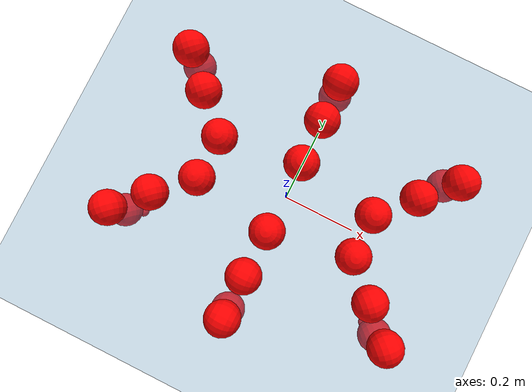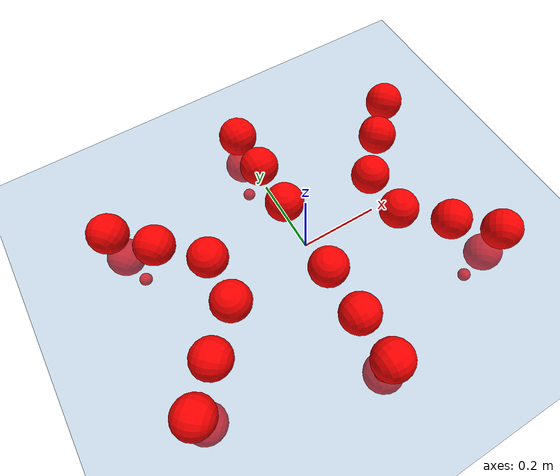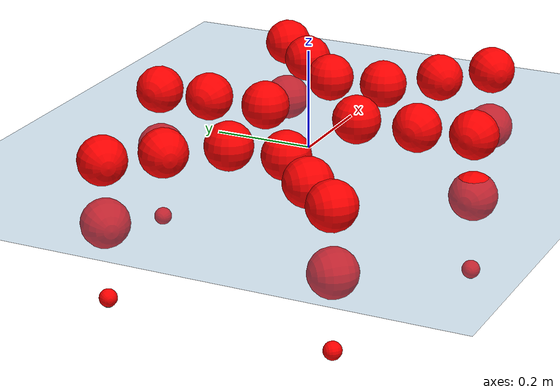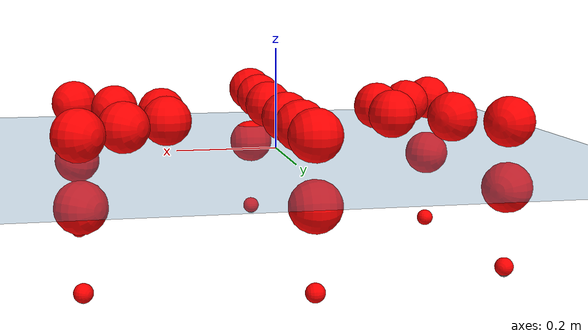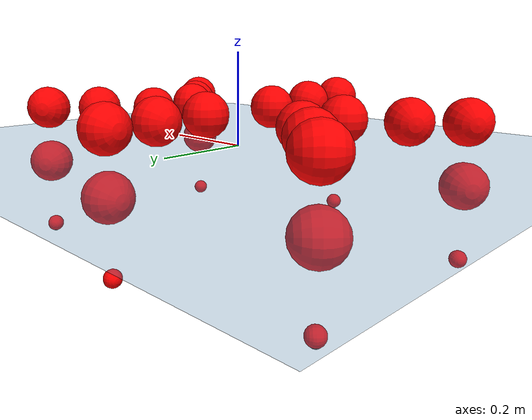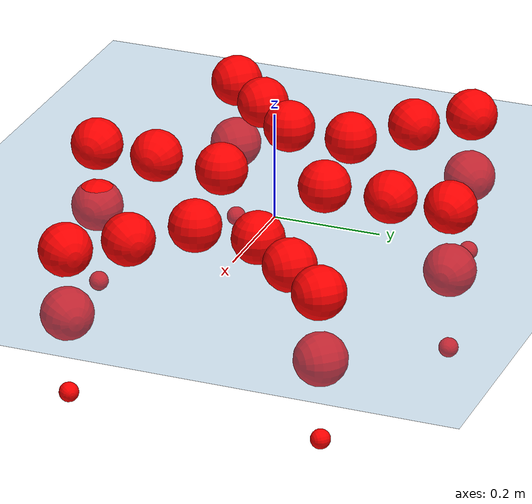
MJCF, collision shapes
<mujoco model="Golem">
  <compiler angle="radian" assetdir="assets" balanceinertia="true" inertiafromgeom="false"/>

  <option timestep="0.005" density="1.2" viscosity="2e-05"/>

  <size nkey="1"/>

  <visual>
    <quality shadowsize="8192"/>
    <map shadowclip="0.5"/>
  </visual>

  <default>
    <default class="/">
      <joint armature="0.01" damping="0.01" frictionloss="0.01"/>
      <geom contype="0" conaffinity="0" group="1" solref="-1000 -80"/>
      <site size="0.01 0.005 0.005" group="5"/>
      <general forcelimited="true" biastype="affine" gainprm="25" biasprm="0 -25 -0.5"/>
      <default class="visual">
        <geom type="mesh" group="2"/>
      </default>
      <default class="collision">
        <geom group="3"/>
      </default>
      <default class="foot">
        <geom size="0.01 0 0" condim="6" group="4" priority="1" solimp="0.015 1 0.01"/>
      </default>
      <default class="reward_collision_sphere">
        <geom group="5" rgba="1 0 0 1"/>
      </default>
    </default>
  </default>

  <asset>
    <texture type="skybox" colorspace="auto" name="//unnamed_texture_0" builtin="gradient" rgb1="0.95 0.95 0.95" rgb2="0.95 0.95 0.95" width="100" height="600"/>
    <texture type="2d" colorspace="auto" name="texplane" builtin="checker" rgb1="0.345 0.575 0.748" rgb2="0.345 0.575 0.748" markrgb="1 1 1" width="512" height="512"/>
    <material name="MatPlane" class="/" texture="texplane" texuniform="true" texrepeat="2 2" specular="0.9"/>
    <mesh name="body" class="/" file="body.stl" scale="0.001 0.001 0.001"/>
    <mesh name="coxa" class="/" file="coxa.stl" scale="0.001 0.001 0.001"/>
    <mesh name="femur" class="/" file="femur.stl" scale="0.001 0.001 0.001"/>
    <mesh name="tibia" class="/" file="tibia.stl" scale="0.001 0.001 0.001"/>
    <mesh name="tarsus" class="/" file="tarsus.stl" scale="0.001 0.001 0.001"/>
  </asset>

  <worldbody>
    <geom name="floor" class="/" size="100 100 0.125" type="plane" group="0" material="MatPlane"/>
    <light name="toplight_shadow" class="/" pos="0 0 5" dir="0.0990148 0.0990148 -0.990148" type="directional" ambient="0.04 0.04 0.04" diffuse="0.55 0.55 0.55" specular="0.12 0.12 0.12"/>
    <light name="toplight_fill" class="/" pos="0 0 5" dir="0.0990148 0.0990148 -0.990148" type="directional" castshadow="false" ambient="0.04 0.04 0.04" diffuse="0.3 0.3 0.3" specular="0.08 0.08 0.08"/>
    <body name="trunk" pos="-0.00126286 -0.00172799 0.00202596" quat="0.999999 0.000705262 0.000109872 0.00100964">
      <inertial pos="0.0015707 0.00133539 0.00222079" quat="0.999967 -0.00694693 0.0037156 -0.00175341" mass="6.47185" diaginertia="0.0616341 0.0153226 0.0155584"/>
      <joint name="//unnamed_joint_0" type="free"/>
      <geom name="//unnamed_geom_1" class="/" pos="0 0 0.0694318" quat="1 0 0 0" type="mesh" rgba="0.9 0.9 0.9 1" mesh="body"/>
      <site name="imu" class="/" pos="0.1841 0.00639866 0.112892" size="0.0119784"/>
      <camera name="track" class="/" pos="0 -2.15506 0" quat="0.707107 0.707107 0 0" mode="trackcom"/>
      <camera name="ego_camera" class="/" pos="0.186046 0 0.108487" quat="-0.5 -0.5 0.5 0.5"/>
      <body name="coxa_RR" pos="-0.256392 -0.0889476 0.0719033" quat="0.383481 -0.000766631 0.000314239 -0.923548">
        <inertial pos="0.000131416 0.00153925 0.00264237" quat="0.99999 0.0029573 -0.00141929 0.00289991" mass="0.354364" diaginertia="0.0607905 0.015027 0.0161874"/>
        <joint name="coxa_joint_RR" class="/" pos="0 0 0" axis="-0.00530699 -0.00619598 -0.999967" range="-3.13622 3.08895" armature="0.0109372" damping="0.00883832" frictionloss="0.0116319"/>
        <geom name="//unnamed_geom_2" class="/" type="mesh" rgba="0.2 0.2 0.2 1" mesh="coxa"/>
        <geom name="//unnamed_geom_3" class="reward_collision_sphere" size="0.0479137" pos="-0.0429337 0 0"/>
        <body name="femur_RR" pos="0.0848261 -0.00317983 -0.00455862" quat="0.500361 -0.499909 0.499502 0.500227">
          <inertial pos="0.00255984 0.000247183 0.00362778" quat="0.999893 -0.0115009 -0.00443115 -0.00783835" mass="0.343989" diaginertia="0.0606951 0.0146076 0.0148699"/>
          <joint name="femur_joint_RR" class="/" pos="0 0 0" axis="-0.00396249 0.0104666 -0.999937" range="-3.19092 3.14473" armature="0.0118924" damping="0.0225739" frictionloss="0.0121271"/>
          <geom name="//unnamed_geom_4" class="/" type="mesh" rgba="0.9 0.9 0.9 1" mesh="femur"/>
          <geom name="//unnamed_geom_5" class="reward_collision_sphere" size="0.0479137"/>
          <body name="tibia_RR" pos="0.000967112 -0.115768 0.0028778" quat="0.000218682 1 -0.000249682 -0.000146923">
            <inertial pos="-0.000996909 0.000314401 0.000789353" quat="0.999961 -0.00160755 0.00493553 0.00714796" mass="0.336276" diaginertia="0.055432 0.0138801 0.0141695"/>
            <joint name="tibia_joint_RR" class="/" pos="0 0 0" axis="0.000114613 3.44117e-07 1" range="-3.17291 3.13856" armature="0.0105614" damping="0" frictionloss="0.011838"/>
            <geom name="//unnamed_geom_6" class="/" type="mesh" rgba="0.2 0.2 0.2 1" mesh="tibia"/>
            <geom name="//unnamed_geom_7" class="reward_collision_sphere" size="0.0479137"/>
            <body name="tarsus_RR" pos="0.128375 0.00194088 -0.00173919" quat="1 0.000201223 -0.000320536 0.000107386">
              <inertial pos="0.0845706 0.000487051 -0.00103205" quat="0.498215 0.508106 0.504538 0.488928" mass="0.321555" diaginertia="0.0608362 0.014178 0.0145902"/>
              <joint name="tarsus_joint_RR" class="/" pos="0 0 0" axis="0.0137239 0.00868295 0.999868" stiffness="0.00846413" range="-3.14153 3.11194" armature="0.0104224" damping="0.0387" frictionloss="0.013516"/>
              <geom name="//unnamed_geom_8" class="/" type="mesh" rgba="0.9 0.9 0.9 1" mesh="tarsus"/>
              <geom name="foot_1" class="foot" size="0.0113613" pos="0.160286 0 0" quat="0 -0.707107 0 0.707107"/>
              <geom name="//unnamed_geom_10" class="reward_collision_sphere" size="0.0479137"/>
              <geom name="//unnamed_geom_11" class="reward_collision_sphere" size="0.0179676" pos="0.153846 0 0"/>
              <site name="foot_1" class="foot" pos="0.160286 0 0" quat="0 -0.707107 0 0.707107" size="0.0119784"/>
            </body>
          </body>
        </body>
      </body>
      <body name="coxa_RM" pos="-0.00213645 -0.14468 0.0746807" quat="0.707284 0.00106235 -0.00105765 -0.706928">
        <inertial pos="0.00022765 -0.000800334 0.00164657" quat="0.999997 0.00151206 -0.000326442 -0.00176798" mass="0.342625" diaginertia="0.0609688 0.0145582 0.014311"/>
        <joint name="coxa_joint_RM" class="/" pos="0 0 0" axis="0.00533931 -0.00117142 -0.999985" stiffness="0.00185414" range="-3.18153 3.11713" armature="0.0128652" damping="0.0122658" frictionloss="0.0104981"/>
        <geom name="//unnamed_geom_12" class="/" type="mesh" rgba="0.2 0.2 0.2 1" mesh="coxa"/>
        <geom name="//unnamed_geom_13" class="reward_collision_sphere" size="0.0479137" pos="-0.0429337 0 0"/>
        <body name="femur_RM" pos="0.0844443 -0.00218971 0.00425365" quat="0.500088 -0.500213 0.500047 0.499651">
          <inertial pos="-0.00192436 -0.000576019 6.3045e-05" quat="0.999919 -0.00851846 0.00624832 -0.00706668" mass="0.334863" diaginertia="0.0621688 0.0146084 0.0147621"/>
          <joint name="femur_joint_RM" class="/" pos="0 0 0" axis="5.74569e-05 -0.00133053 -0.999999" range="-3.15381 3.15097" armature="0.0134615" damping="0.0290348" frictionloss="0.011469"/>
          <geom name="//unnamed_geom_14" class="/" type="mesh" rgba="0.9 0.9 0.9 1" mesh="femur"/>
          <geom name="//unnamed_geom_15" class="reward_collision_sphere" size="0.0479137"/>
          <body name="tibia_RM" pos="-0.00423521 -0.116448 0.000212134" quat="2.85638e-05 1 -7.77158e-05 1.64803e-06">
            <inertial pos="0.00268301 0.0026667 -0.00165217" quat="0.999963 0.0076562 0.000416499 0.00392543" mass="0.362351" diaginertia="0.0619246 0.0148392 0.0159538"/>
            <joint name="tibia_joint_RM" class="/" pos="0 0 0" axis="0.00265637 -0.0046593 0.999986" range="-3.14765 3.08723" armature="0.0116679" damping="0.0141747" frictionloss="0.0104166"/>
            <geom name="//unnamed_geom_16" class="/" type="mesh" rgba="0.2 0.2 0.2 1" mesh="tibia"/>
            <geom name="//unnamed_geom_17" class="reward_collision_sphere" size="0.0479137"/>
            <body name="tarsus_RM" pos="0.123473 0.00250532 0.00221917" quat="1 4.8526e-06 4.74933e-06 1.75157e-06">
              <inertial pos="0.0843407 -0.0022728 -0.000255633" quat="0.503464 0.49294 0.496458 0.507014" mass="0.357916" diaginertia="0.0628121 0.0151545 0.0156107"/>
              <joint name="tarsus_joint_RM" class="/" pos="0 0 0" axis="-0.000336507 -0.00168154 0.999999" stiffness="0.00658477" range="-3.13421 3.14466" armature="0.0121623" damping="0.0139742" frictionloss="0.0121556"/>
              <geom name="//unnamed_geom_18" class="/" type="mesh" rgba="0.9 0.9 0.9 1" mesh="tarsus"/>
              <geom name="foot_2" class="foot" size="0.0126763" pos="0.160286 0 0" quat="0 -0.707107 0 0.707107"/>
              <geom name="//unnamed_geom_20" class="reward_collision_sphere" size="0.0479137"/>
              <geom name="//unnamed_geom_21" class="reward_collision_sphere" size="0.0179676" pos="0.153846 0 0"/>
              <site name="foot_2" class="foot" pos="0.160286 0 0" quat="0 -0.707107 0 0.707107" size="0.0119784"/>
            </body>
          </body>
        </body>
      </body>
      <body name="coxa_RF" pos="0.2552 -0.0905674 0.0693537" quat="0.923777 -0.00019181 -0.000129899 -0.382932">
        <inertial pos="0.0033038 0.00228156 0.000249483" quat="0.999997 0.00140366 0.000386164 0.00211352" mass="0.33626" diaginertia="0.0632404 0.0153358 0.0155317"/>
        <joint name="coxa_joint_RF" class="/" pos="0 0 0" axis="4.00385e-05 5.60444e-05 -1" range="-3.18911 3.14247" armature="0.0122227" damping="0.010473" frictionloss="0.0103954"/>
        <geom name="//unnamed_geom_22" class="/" type="mesh" rgba="0.2 0.2 0.2 1" mesh="coxa"/>
        <geom name="//unnamed_geom_23" class="reward_collision_sphere" size="0.0479137" pos="-0.0429337 0 0"/>
        <body name="femur_RF" pos="0.083239 0.00192048 -0.00151685" quat="0.499953 -0.500875 0.500127 0.499043">
          <inertial pos="0.00183368 -0.00253074 0.00205773" quat="0.999997 0.000464089 -0.000519451 0.00236172" mass="0.337958" diaginertia="0.0608781 0.0145577 0.0147827"/>
          <joint name="femur_joint_RF" class="/" pos="0 0 0" axis="0.00754778 -0.00227411 -0.999969" stiffness="0.013722" range="-3.10178 3.11489" armature="0.0116472" damping="0.0187034" frictionloss="0.0104919"/>
          <geom name="//unnamed_geom_24" class="/" type="mesh" rgba="0.9 0.9 0.9 1" mesh="femur"/>
          <geom name="//unnamed_geom_25" class="reward_collision_sphere" size="0.0479137"/>
          <body name="tibia_RF" pos="-0.00253422 -0.116927 -0.000427573" quat="0.00026758 1 -2.82756e-05 -6.5067e-05">
            <inertial pos="0.00179065 -0.000318332 -0.0011124" quat="0.999957 0.00806339 -0.00201152 -0.0040982" mass="0.346525" diaginertia="0.0605886 0.0145836 0.0148664"/>
            <joint name="tibia_joint_RF" class="/" pos="0 0 0" axis="0.010658 -0.00596933 0.999925" stiffness="0.00772405" range="-3.14117 3.12445" armature="0.0112609" damping="0.0359855" frictionloss="0.0119349"/>
            <geom name="//unnamed_geom_26" class="/" type="mesh" rgba="0.2 0.2 0.2 1" mesh="tibia"/>
            <geom name="//unnamed_geom_27" class="reward_collision_sphere" size="0.0479137"/>
            <body name="tarsus_RF" pos="0.123899 -0.00145592 0.00110216" quat="1 -0.000215123 0.000442985 0.00034153">
              <inertial pos="0.0842369 1.96178e-05 0.000520532" quat="0.501068 0.490919 0.506962 0.500919" mass="0.35582" diaginertia="0.0619957 0.0140152 0.0150929"/>
              <joint name="tarsus_joint_RF" class="/" pos="0 0 0" axis="0.00027789 0.0070511 0.999975" range="-3.18276 3.13654" armature="0.0119942" damping="0.000519242" frictionloss="0.00995248"/>
              <geom name="//unnamed_geom_28" class="/" type="mesh" rgba="0.9 0.9 0.9 1" mesh="tarsus"/>
              <geom name="foot_3" class="foot" size="0.0111288" pos="0.160286 0 0" quat="0 -0.707107 0 0.707107"/>
              <geom name="//unnamed_geom_30" class="reward_collision_sphere" size="0.0479137"/>
              <geom name="//unnamed_geom_31" class="reward_collision_sphere" size="0.0179676" pos="0.153846 0 0"/>
              <site name="foot_3" class="foot" pos="0.160286 0 0" quat="0 -0.707107 0 0.707107" size="0.0119784"/>
            </body>
          </body>
        </body>
      </body>
      <body name="coxa_LR" pos="-0.253402 0.0931721 0.0694071" quat="0.382298 0.000577674 -9.3761e-05 0.924039">
        <inertial pos="-0.00138195 0.0022487 0.00299183" quat="0.999999 -0.000842734 -0.00057032 0.000406708" mass="0.362964" diaginertia="0.063429 0.015255 0.0162317"/>
        <joint name="coxa_joint_LR" class="/" pos="0 0 0" axis="0.00440661 0.00185803 -0.999989" range="-3.19091 3.07776" armature="0.0121506" damping="0.0104404" frictionloss="0.0137822"/>
        <geom name="//unnamed_geom_32" class="/" type="mesh" rgba="0.2 0.2 0.2 1" mesh="coxa"/>
        <geom name="//unnamed_geom_33" class="reward_collision_sphere" size="0.0479137" pos="-0.0429337 0 0"/>
        <body name="femur_LR" pos="0.0851152 0.00123408 0.00325475" quat="0.500169 -0.499949 0.499643 0.500239">
          <inertial pos="0.000628113 -0.000763877 -0.000641584" quat="0.999957 0.000247747 0.00476848 0.00797415" mass="0.334655" diaginertia="0.0567158 0.0135655 0.0147604"/>
          <joint name="femur_joint_LR" class="/" pos="0 0 0" axis="0.00888202 -0.00670843 0.999938" range="-3.14021 3.13393" armature="0.0125875" damping="0.00828093" frictionloss="0.0104155"/>
          <geom name="//unnamed_geom_34" class="/" type="mesh" rgba="0.9 0.9 0.9 1" mesh="femur"/>
          <geom name="//unnamed_geom_35" class="reward_collision_sphere" size="0.0479137"/>
          <body name="tibia_LR" pos="0.000744625 -0.116553 -0.00249111" quat="-3.41254e-05 1 -7.13016e-05 9.43626e-05">
            <inertial pos="0.00141699 -0.0021727 -0.000402114" quat="1 3.80998e-05 1.58579e-05 -7.16577e-05" mass="0.339558" diaginertia="0.0573695 0.014432 0.0155593"/>
            <joint name="tibia_joint_LR" class="/" pos="0 0 0" axis="0.00274289 -0.0053204 -0.999982" range="-3.12412 3.14655" armature="0.0136562" damping="0.00197367" frictionloss="0.0131132"/>
            <geom name="//unnamed_geom_36" class="/" type="mesh" rgba="0.2 0.2 0.2 1" mesh="tibia"/>
            <geom name="//unnamed_geom_37" class="reward_collision_sphere" size="0.0479137"/>
            <body name="tarsus_LR" pos="0.124914 -0.00120898 -0.00193536" quat="0.999999 -0.000318599 -0.000770424 -0.000882034">
              <inertial pos="0.0836486 -0.00131585 -0.00267881" quat="0.509015 0.492519 0.499908 0.498418" mass="0.356086" diaginertia="0.0617023 0.0150809 0.0157928"/>
              <joint name="tarsus_joint_LR" class="/" pos="0 0 0" axis="-0.00116186 -0.000743725 -0.999999" range="-3.1778 3.09694" armature="0.013891" damping="0.0282925" frictionloss="0.0103965"/>
              <geom name="//unnamed_geom_38" class="/" type="mesh" rgba="0.9 0.9 0.9 1" mesh="tarsus"/>
              <geom name="foot_4" class="foot" size="0.0131691" pos="0.160286 0 0" quat="0.707107 0 -0.707107 0"/>
              <geom name="//unnamed_geom_40" class="reward_collision_sphere" size="0.0479137"/>
              <geom name="//unnamed_geom_41" class="reward_collision_sphere" size="0.0179676" pos="0.153846 0 0"/>
              <site name="foot_4" class="foot" pos="0.160286 0 0" quat="0.707107 0 -0.707107 0" size="0.0119784"/>
            </body>
          </body>
        </body>
      </body>
      <body name="coxa_LM" pos="-0.00105896 0.13893 0.073298" quat="0.707754 0.000369367 0.00173054 0.706456">
        <inertial pos="-0.000443297 0.00133652 -0.00156888" quat="0.999998 0.00177168 0.000251648 -0.000479779" mass="0.341253" diaginertia="0.0616594 0.0151948 0.015571"/>
        <joint name="coxa_joint_LM" class="/" pos="0 0 0" axis="-0.00156419 0.004427 -0.999989" range="-3.12158 3.12403" armature="0.00996317" damping="0.000916645" frictionloss="0.0135593"/>
        <geom name="//unnamed_geom_42" class="/" type="mesh" rgba="0.2 0.2 0.2 1" mesh="coxa"/>
        <geom name="//unnamed_geom_43" class="reward_collision_sphere" size="0.0479137" pos="-0.0429337 0 0"/>
        <body name="femur_LM" pos="0.0813554 0.00185339 -0.000409126" quat="0.49983 -0.499868 0.500166 0.500136">
          <inertial pos="0.000254248 -0.000251882 0.00143891" quat="0.999962 0.0017519 0.00189962 -0.00833031" mass="0.342277" diaginertia="0.0589623 0.014898 0.015238"/>
          <joint name="femur_joint_LM" class="/" pos="0 0 0" axis="-0.00141848 0.00157416 0.999998" stiffness="0.000275147" range="-3.11079 3.19034" armature="0.0128234" damping="0" frictionloss="0.012149"/>
          <geom name="//unnamed_geom_44" class="/" type="mesh" rgba="0.9 0.9 0.9 1" mesh="femur"/>
          <geom name="//unnamed_geom_45" class="reward_collision_sphere" size="0.0479137"/>
          <body name="tibia_LM" pos="0.00136906 -0.111928 0.00177816" quat="0.000843011 0.999999 -0.000445567 0.000383699">
            <inertial pos="-0.00260007 -0.00324197 -0.0036286" quat="0.999991 -0.00327726 -0.000331636 0.00279272" mass="0.342338" diaginertia="0.058291 0.0147575 0.0151553"/>
            <joint name="tibia_joint_LM" class="/" pos="0 0 0" axis="-0.00851499 0.00290906 -0.99996" stiffness="0.00175569" range="-3.08696 3.12239" armature="0.0126852" damping="0.0116021" frictionloss="0.0117967"/>
            <geom name="//unnamed_geom_46" class="/" type="mesh" rgba="0.2 0.2 0.2 1" mesh="tibia"/>
            <geom name="//unnamed_geom_47" class="reward_collision_sphere" size="0.0479137"/>
            <body name="tarsus_LM" pos="0.123358 0.000450118 -0.000136036" quat="1 0.000623968 -6.19902e-05 -0.000319644">
              <inertial pos="0.0885907 0.00236354 0.0015682" quat="0.50296 0.501754 0.497875 0.497388" mass="0.331113" diaginertia="0.0594027 0.0132978 0.0140496"/>
              <joint name="tarsus_joint_LM" class="/" pos="0 0 0" axis="-0.000625078 -0.00126793 -0.999999" range="-3.05407 3.16582" armature="0.0117996" damping="0.0106553" frictionloss="0.0119255"/>
              <geom name="//unnamed_geom_48" class="/" type="mesh" rgba="0.9 0.9 0.9 1" mesh="tarsus"/>
              <geom name="foot_5" class="foot" size="0.0116974" pos="0.160286 0 0" quat="0.707107 0 -0.707107 0"/>
              <geom name="//unnamed_geom_50" class="reward_collision_sphere" size="0.0479137"/>
              <geom name="//unnamed_geom_51" class="reward_collision_sphere" size="0.0179676" pos="0.153846 0 0"/>
              <site name="foot_5" class="foot" pos="0.160286 0 0" quat="0.707107 0 -0.707107 0" size="0.0119784"/>
            </body>
          </body>
        </body>
      </body>
      <body name="coxa_LF" pos="0.254797 0.088176 0.0661459" quat="0.924165 -0.000230521 -3.95564e-05 0.381994">
        <inertial pos="5.35011e-05 -0.00290607 0.000944292" quat="1 -0.000252021 0.000901461 -0.000273056" mass="0.330716" diaginertia="0.0565999 0.0140065 0.0142908"/>
        <joint name="coxa_joint_LF" class="/" pos="0 0 0" axis="0.00668131 0.00555959 -0.999962" range="-3.14559 3.15021" armature="0.00965904" damping="0.0270933" frictionloss="0.0135364"/>
        <geom name="//unnamed_geom_52" class="/" type="mesh" rgba="0.2 0.2 0.2 1" mesh="coxa"/>
        <geom name="//unnamed_geom_53" class="reward_collision_sphere" size="0.0479137" pos="-0.0429337 0 0"/>
        <body name="femur_LF" pos="0.0827628 0.00473612 0.00212253" quat="0.499979 -0.50005 0.500011 0.499959">
          <inertial pos="0.00108451 -0.0025258 -0.00354789" quat="0.999987 -0.00364116 -0.0019875 -0.00306566" mass="0.347965" diaginertia="0.0589463 0.0138377 0.0149256"/>
          <joint name="femur_joint_LF" class="/" pos="0 0 0" axis="1.66762e-05 0.000324227 1" stiffness="0.0100395" range="-3.12204 3.18961" armature="0.012264" damping="0" frictionloss="0.0134356"/>
          <geom name="//unnamed_geom_54" class="/" type="mesh" rgba="0.9 0.9 0.9 1" mesh="femur"/>
          <geom name="//unnamed_geom_55" class="reward_collision_sphere" size="0.0479137"/>
          <body name="tibia_LF" pos="0.000205785 -0.118148 0.0024386" quat="0.00036768 1 -0.000183036 -0.000442403">
            <inertial pos="0.00246219 0.00214896 -0.000504632" quat="0.999963 -0.00737691 -0.00357344 -0.00253928" mass="0.34794" diaginertia="0.0588679 0.0145817 0.0146032"/>
            <joint name="tibia_joint_LF" class="/" pos="0 0 0" axis="0.00111206 0.00139947 -0.999998" range="-3.12853 3.14537" armature="0.012735" damping="0.00439158" frictionloss="0.0109847"/>
            <geom name="//unnamed_geom_56" class="/" type="mesh" rgba="0.2 0.2 0.2 1" mesh="tibia"/>
            <geom name="//unnamed_geom_57" class="reward_collision_sphere" size="0.0479137"/>
            <body name="tarsus_LF" pos="0.126159 0.000970264 -0.00297479" quat="0.999998 -0.000483257 0.000346398 0.00184235">
              <inertial pos="0.0850155 -0.000557588 0.000230397" quat="0.498062 0.500091 0.499078 0.502758" mass="0.340187" diaginertia="0.0628683 0.0151196 0.0154731"/>
              <joint name="tarsus_joint_LF" class="/" pos="0 0 0" axis="-0.0106168 -0.0137682 -0.999849" stiffness="0.0225389" range="-3.08773 3.14842" armature="0.0135615" damping="0.030956" frictionloss="0.0132733"/>
              <geom name="//unnamed_geom_58" class="/" type="mesh" rgba="0.9 0.9 0.9 1" mesh="tarsus"/>
              <geom name="foot_6" class="foot" size="0.0122057" pos="0.160286 0 0" quat="0.707107 0 -0.707107 0"/>
              <geom name="//unnamed_geom_60" class="reward_collision_sphere" size="0.0479137"/>
              <geom name="//unnamed_geom_61" class="reward_collision_sphere" size="0.0179676" pos="0.153846 0 0"/>
              <site name="foot_6" class="foot" pos="0.160286 0 0" quat="0.707107 0 -0.707107 0" size="0.0119784"/>
            </body>
          </body>
        </body>
      </body>
    </body>
  </worldbody>

  <contact>
    <pair class="/" geom1="floor" geom2="foot_1" name="//unnamed_contact_0"/>
    <pair class="/" geom1="floor" geom2="foot_2" name="//unnamed_contact_1"/>
    <pair class="/" geom1="floor" geom2="foot_3" name="//unnamed_contact_2"/>
    <pair class="/" geom1="floor" geom2="foot_4" name="//unnamed_contact_3"/>
    <pair class="/" geom1="floor" geom2="foot_5" name="//unnamed_contact_4"/>
    <pair class="/" geom1="floor" geom2="foot_6" name="//unnamed_contact_5"/>
  </contact>

  <actuator>
    <general name="coxa_joint_RR" class="/" joint="coxa_joint_RR" forcerange="-9.49158 9.49158" gainprm="29.2688" biasprm="0 -29.2688 -0.580533"/>
    <general name="femur_joint_RR" class="/" joint="femur_joint_RR" forcerange="-9.50917 9.50917" gainprm="29.2688" biasprm="0 -29.2688 -0.580533"/>
    <general name="tibia_joint_RR" class="/" joint="tibia_joint_RR" forcerange="-9.81041 9.81041" gainprm="29.2688" biasprm="0 -29.2688 -0.580533"/>
    <general name="tarsus_joint_RR" class="/" joint="tarsus_joint_RR" forcerange="-9.38741 9.38741" gainprm="29.2688" biasprm="0 -29.2688 -0.580533"/>
    <general name="coxa_joint_RM" class="/" joint="coxa_joint_RM" forcerange="-8.69047 8.69047" gainprm="29.2688" biasprm="0 -29.2688 -0.580533"/>
    <general name="femur_joint_RM" class="/" joint="femur_joint_RM" forcerange="-8.7433 8.7433" gainprm="29.2688" biasprm="0 -29.2688 -0.580533"/>
    <general name="tibia_joint_RM" class="/" joint="tibia_joint_RM" forcerange="-9.20101 9.20101" gainprm="29.2688" biasprm="0 -29.2688 -0.580533"/>
    <general name="tarsus_joint_RM" class="/" joint="tarsus_joint_RM" forcerange="-7.79627 7.79627" gainprm="29.2688" biasprm="0 -29.2688 -0.580533"/>
    <general name="coxa_joint_RF" class="/" joint="coxa_joint_RF" forcerange="-9.48761 9.48761" gainprm="29.2688" biasprm="0 -29.2688 -0.580533"/>
    <general name="femur_joint_RF" class="/" joint="femur_joint_RF" forcerange="-8.92184 8.92184" gainprm="29.2688" biasprm="0 -29.2688 -0.580533"/>
    <general name="tibia_joint_RF" class="/" joint="tibia_joint_RF" forcerange="-8.08557 8.08557" gainprm="29.2688" biasprm="0 -29.2688 -0.580533"/>
    <general name="tarsus_joint_RF" class="/" joint="tarsus_joint_RF" forcerange="-9.53087 9.53087" gainprm="29.2688" biasprm="0 -29.2688 -0.580533"/>
    <general name="coxa_joint_LR" class="/" joint="coxa_joint_LR" forcerange="-8.88562 8.88562" gainprm="29.2688" biasprm="0 -29.2688 -0.580533"/>
    <general name="femur_joint_LR" class="/" joint="femur_joint_LR" forcerange="-8.84751 8.84751" gainprm="29.2688" biasprm="0 -29.2688 -0.580533"/>
    <general name="tibia_joint_LR" class="/" joint="tibia_joint_LR" forcerange="-7.94569 7.94569" gainprm="29.2688" biasprm="0 -29.2688 -0.580533"/>
    <general name="tarsus_joint_LR" class="/" joint="tarsus_joint_LR" forcerange="-8.37191 8.37191" gainprm="29.2688" biasprm="0 -29.2688 -0.580533"/>
    <general name="coxa_joint_LM" class="/" joint="coxa_joint_LM" forcerange="-7.94664 7.94664" gainprm="29.2688" biasprm="0 -29.2688 -0.580533"/>
    <general name="femur_joint_LM" class="/" joint="femur_joint_LM" forcerange="-7.90088 7.90088" gainprm="29.2688" biasprm="0 -29.2688 -0.580533"/>
    <general name="tibia_joint_LM" class="/" joint="tibia_joint_LM" forcerange="-8.54983 8.54983" gainprm="29.2688" biasprm="0 -29.2688 -0.580533"/>
    <general name="tarsus_joint_LM" class="/" joint="tarsus_joint_LM" forcerange="-8.01599 8.01599" gainprm="29.2688" biasprm="0 -29.2688 -0.580533"/>
    <general name="coxa_joint_LF" class="/" joint="coxa_joint_LF" forcerange="-7.88136 7.88136" gainprm="29.2688" biasprm="0 -29.2688 -0.580533"/>
    <general name="femur_joint_LF" class="/" joint="femur_joint_LF" forcerange="-9.56048 9.56048" gainprm="29.2688" biasprm="0 -29.2688 -0.580533"/>
    <general name="tibia_joint_LF" class="/" joint="tibia_joint_LF" forcerange="-9.088 9.088" gainprm="29.2688" biasprm="0 -29.2688 -0.580533"/>
    <general name="tarsus_joint_LF" class="/" joint="tarsus_joint_LF" forcerange="-7.92841 7.92841" gainprm="29.2688" biasprm="0 -29.2688 -0.580533"/>
  </actuator>

  <sensor>
    <gyro site="imu" name="imu_angular_velocity"/>
    <velocimeter site="imu" name="imu_linear_velocity"/>
    <framelinvel objtype="site" objname="foot_1" name="foot_1_global_linear_velocity"/>
    <framelinvel objtype="site" objname="foot_2" name="foot_2_global_linear_velocity"/>
    <framelinvel objtype="site" objname="foot_3" name="foot_3_global_linear_velocity"/>
    <framelinvel objtype="site" objname="foot_4" name="foot_4_global_linear_velocity"/>
    <framelinvel objtype="site" objname="foot_5" name="foot_5_global_linear_velocity"/>
    <framelinvel objtype="site" objname="foot_6" name="foot_6_global_linear_velocity"/>
  </sensor>

  <keyframe>
    <key name="home" qpos="0 0 0.1457 1 0 0 0 0 0 0 0 0 0 0 0 0 0 0 0 0 0 0 0 0 0 0 0 0 0 0 0"/>
  </keyframe>
</mujoco>
